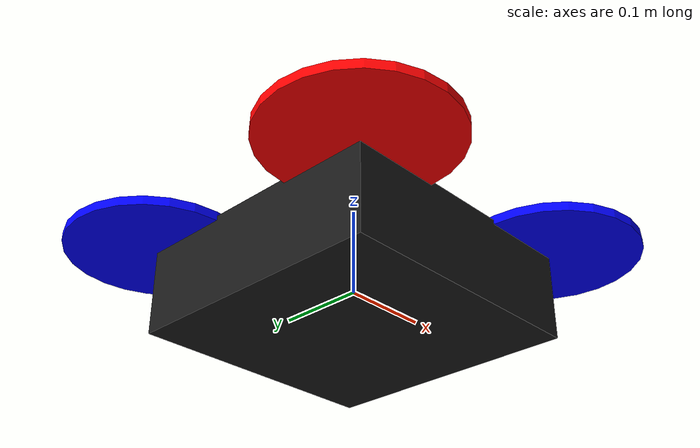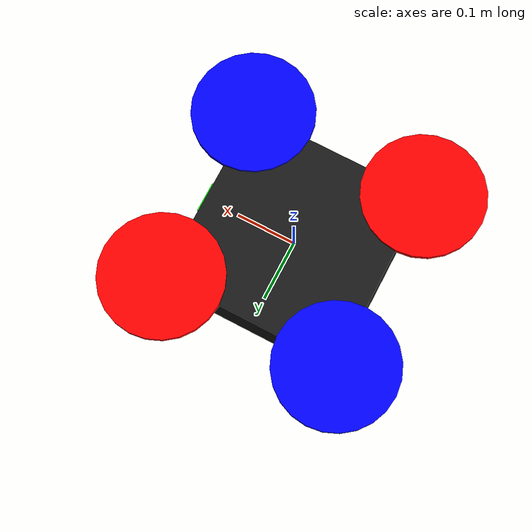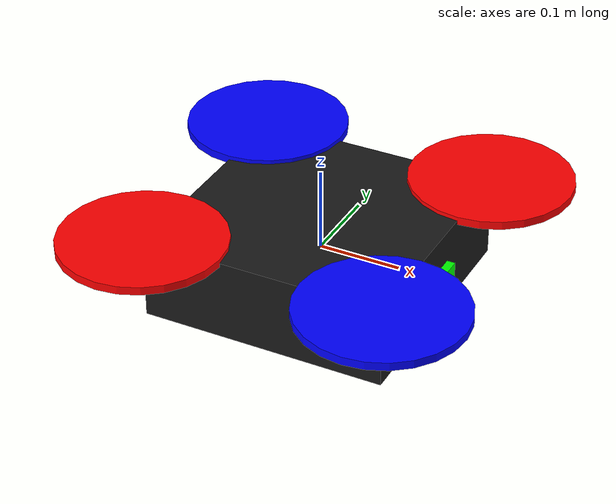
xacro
<?xml version="1.0"?>
<robot name="quadrotor" xmlns:xacro="http://www.ros.org/wiki/xacro">

  <!-- PROPERTIES (Thông số chung)               -->
  <xacro:property name="body_mass" value="1.5"/>
  <xacro:property name="body_length" value="0.3"/>
  <xacro:property name="body_width" value="0.3"/>
  <xacro:property name="body_height" value="0.1"/>

  <xacro:property name="rotor_mass" value="0.05"/>
  <xacro:property name="rotor_radius" value="0.1"/>
  <xacro:property name="rotor_offset_x" value="0.15"/>
  <xacro:property name="rotor_offset_y" value="0.15"/>
  <xacro:property name="rotor_offset_z" value="0.05"/>

  <!-- MACROS (Tái sử dụng code)                 -->

  <!-- Macro cho rotor -->
  <xacro:macro name="rotor" params="name parent x y z color">
    <link name="${name}">
      <visual>
        <geometry>
          <cylinder length="0.01" radius="${rotor_radius}"/>
        </geometry>
        <material name="${color}">
          <color rgba="${color} 1"/>
        </material>
      </visual>

      <collision>
        <geometry>
          <cylinder length="0.01" radius="${rotor_radius}"/>
        </geometry>
      </collision>

      <inertial>
        <mass value="${rotor_mass}"/>
        <inertia ixx="0.0001" ixy="0" ixz="0" iyy="0.0001" iyz="0" izz="0.0001"/>
      </inertial>
    </link>

    <joint name="${name}_joint" type="continuous">
      <parent link="${parent}"/>
      <child link="${name}"/>
      <origin xyz="${x} ${y} ${z}" rpy="0 0 0"/>
      <axis xyz="0 0 1"/>
    </joint>

    <!-- Gazebo color -->
    <gazebo reference="${name}">
      <material>Gazebo/${color}</material>
    </gazebo>
  </xacro:macro>

  <!-- BASE LINK                                 -->
  <link name="base_link">
    <visual>
      <geometry>
        <box size="${body_length} ${body_width} ${body_height}"/>
      </geometry>
      <material name="black">
        <color rgba="0.1 0.1 0.1 1"/>
      </material>
    </visual>

    <collision>
      <geometry>
        <box size="${body_length} ${body_width} ${body_height}"/>
      </geometry>
    </collision>

    <inertial>
      <mass value="${body_mass}"/>
      <inertia ixx="0.01" ixy="0" ixz="0" iyy="0.01" iyz="0" izz="0.02"/>
    </inertial>
  </link>

  <gazebo reference="base_link">
    <material>Gazebo/Black</material>
  </gazebo>

  <!-- ROTORS (Sử dụng macro)                    -->
  <xacro:rotor name="rotor_front_left"  parent="base_link"
               x="${rotor_offset_x}"  y="${rotor_offset_y}"  z="${rotor_offset_z}"
               color="1 0 0"/>

  <xacro:rotor name="rotor_front_right" parent="base_link"
               x="${rotor_offset_x}"  y="${-rotor_offset_y}" z="${rotor_offset_z}"
               color="0 0 1"/>

  <xacro:rotor name="rotor_rear_left"   parent="base_link"
               x="${-rotor_offset_x}" y="${rotor_offset_y}"  z="${rotor_offset_z}"
               color="0 0 1"/>

  <xacro:rotor name="rotor_rear_right"  parent="base_link"
               x="${-rotor_offset_x}" y="${-rotor_offset_y}" z="${rotor_offset_z}"
               color="1 0 0"/>

  <!-- SENSORS (Camera, IMU)                     -->

  <!-- Camera Link -->
  <link name="camera_link">
    <visual>
      <geometry>
        <box size="0.02 0.05 0.02"/>
      </geometry>
      <material name="green">
        <color rgba="0 1 0 1"/>
      </material>
    </visual>

    <collision>
      <geometry>
        <box size="0.02 0.05 0.02"/>
      </geometry>
    </collision>

    <inertial>
      <mass value="0.01"/>
      <inertia ixx="0.00001" ixy="0" ixz="0" iyy="0.00001" iyz="0" izz="0.00001"/>
    </inertial>
  </link>

  <joint name="camera_joint" type="fixed">
    <parent link="base_link"/>
    <child link="camera_link"/>
    <origin xyz="0.15 0 0" rpy="0 0 0"/>
  </joint>

  <!-- Camera Plugin -->
  <gazebo reference="camera_link">
    <sensor type="camera" name="camera1">
      <update_rate>30.0</update_rate>
      <camera name="head">
        <horizontal_fov>1.3962634</horizontal_fov>
        <image>
          <width>640</width>
          <height>480</height>
          <format>R8G8B8</format>
        </image>
        <clip>
          <near>0.02</near>
          <far>300</far>
        </clip>
      </camera>
      <plugin name="camera_controller" filename="libgazebo_ros_camera.so">
        <alwaysOn>true</alwaysOn>
        <updateRate>0.0</updateRate>
        <cameraName>quadrotor/camera</cameraName>
        <imageTopicName>image_raw</imageTopicName>
        <cameraInfoTopicName>camera_info</cameraInfoTopicName>
        <frameName>camera_link</frameName>
      </plugin>
    </sensor>
  </gazebo>

  <!-- GAZEBO PLUGINS                            -->

  <!-- Hector Quadrotor Plugin -->
  <gazebo>
    <plugin name="quadrotor_simple_controller" filename="libhector_gazebo_quadrotor_simple_controller.so">
      <alwaysOn>true</alwaysOn>
      <updateRate>100.0</updateRate>
      <bodyName>base_link</bodyName>
      <topicName>cmd_vel</topicName>
      <velocityTopicName>cmd_vel</velocityTopicName>
      <imuTopic>imu</imuTopic>
      <stateTopic>ground_truth/state</stateTopic>
      <maxForce>30</maxForce>
    </plugin>
  </gazebo>

  <!-- IMU Plugin -->
  <gazebo>
    <plugin name="quadrotor_imu_sim" filename="libhector_gazebo_ros_imu.so">
      <updateRate>100.0</updateRate>
      <bodyName>base_link</bodyName>
      <topicName>imu</topicName>
      <accelDrift>0.0 0.0 0.0</accelDrift>
      <accelGaussianNoise>0.0 0.0 0.0</accelGaussianNoise>
      <rateDrift>0.0 0.0 0.0</rateDrift>
      <rateGaussianNoise>0.0 0.0 0.0</rateGaussianNoise>
    </plugin>
  </gazebo>

</robot>
